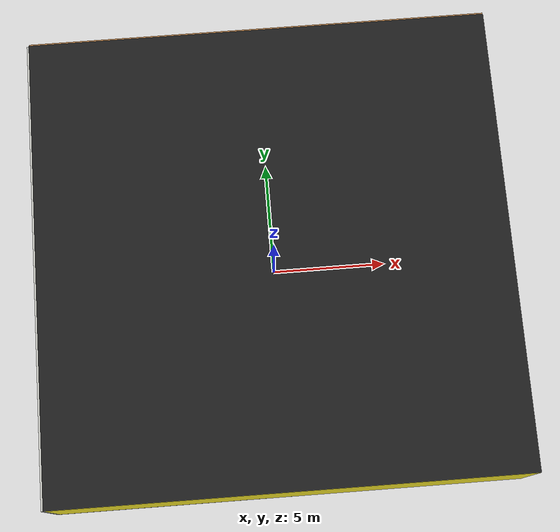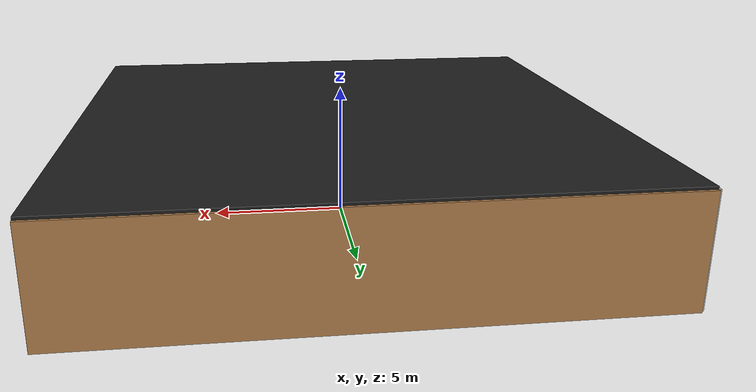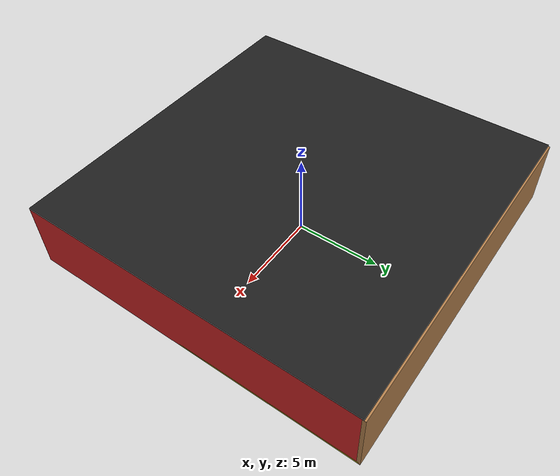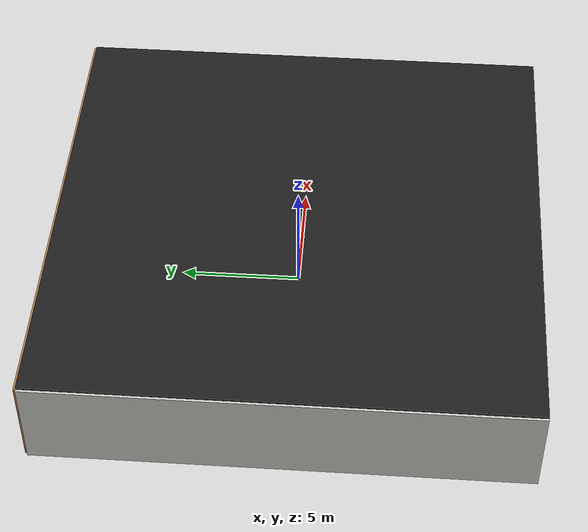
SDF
<sdf version="1.4">
 <world name="default">
  <physics type="ode">
   <max_step_size>0.001</max_step_size>
   <real_time_factor>1</real_time_factor>
   <real_time_update_rate>1000</real_time_update_rate>
   <gravity>0 0 -9.8</gravity>
  </physics>
  <scene><ambient>0.4 0.4 0.4 1</ambient><background>0.7 0.7 0.7 1</background><shadows>1</shadows></scene>
  <model name="Surrounding">
   <static>1</static>
   <link name="Ceiling">
    <collision name="Ceiling_Collision"><geometry><box><size>20 20 0.1</size></box></geometry></collision>
    <visual name="Ceiling_Visual">
     <geometry><box><size>20 20 0.1</size></box></geometry>
     <material>
      <script><uri>file://media/materials/scripts/gazebo.material</uri><name>Gazebo/FlatBlack</name></script>
     </material>
    </visual>
    <pose>0 0 4.05 0 0 0</pose>
   </link>
   <link name="Wall_South">
    <collision name="Wall_South_Collision">
     <geometry><box><size>20 0 4</size></box></geometry>
     <pose>0 0 2 0 -0 0</pose>
    </collision>
    <visual name="Wall_South_Visual">
     <pose>0 0 2 0 -0 0</pose>
     <geometry><box><size>20 0 4</size></box></geometry>
     <material>
      <script><uri>file://media/materials/scripts/gazebo.material</uri><name>Gazebo/YellowGlow</name></script>
     </material>
    </visual>
    <velocity_decay><linear>0</linear><angular>0</angular></velocity_decay>
    <pose>0 -10 0 0 -0 0</pose>
   </link>
   <link name="Wall_East">
    <collision name="Wall_21_Collision">
     <geometry><box><size>20 0 4</size></box></geometry>
     <pose>0 0 2 0 -0 0</pose>
    </collision>
    <visual name="Wall_21_Visual">
     <pose>0 0 2 0 -0 0</pose>
     <geometry><box><size>20 0 4</size></box></geometry>
     <material>
      <script><uri>file://media/materials/scripts/gazebo.material</uri><name>Gazebo/RedGlow</name></script>
     </material>
    </visual>
    <velocity_decay><linear>0</linear><angular>0</angular></velocity_decay>
    <pose>10 0 0 0 -0 1.5708</pose>
   </link>
   <link name="Wall_North">
    <collision name="Wall_22_Collision">
     <geometry><box><size>20 0.2 4</size></box></geometry>
     <pose>0 0 2 0 -0 0</pose>
    </collision>
    <visual name="Wall_22_Visual">
     <pose>0 0 2 0 -0 0</pose>
     <geometry><box><size>20 0.2 4</size></box></geometry>
     <material>
      <script><uri>file://media/materials/scripts/gazebo.material</uri><name>Gazebo/Wood</name></script>
     </material>
    </visual>
    <velocity_decay><linear>0</linear><angular>0</angular></velocity_decay>
    <pose>0 10 0 0 -0 0</pose>
   </link>
   <link name="Wall_West">
    <collision name="Wall_23_Collision">
     <geometry><box><size>20 0.2 4</size></box></geometry>
     <pose>0 0 2 0 -0 0</pose>
    </collision>
    <visual name="Wall_23_Visual">
     <pose>0 0 2 0 -0 0</pose>
     <geometry><box><size>20 0.2 4</size></box></geometry>
     <material>
      <script><uri>file://media/materials/scripts/gazebo.material</uri><name>Gazebo/CeilingTiled</name></script>
     </material>
    </visual>
    <velocity_decay><linear>0</linear><angular>0</angular></velocity_decay>
    <pose>-10 0 0 0 0 -1.5708</pose>
   </link>
   <link name="Ground_link">
    <collision name="collision">
     <pose>0 0 .05 0 -0 0</pose>
     <geometry><box><size>20 20 0.1</size></box></geometry>
    </collision>
    <visual name="visual">
     <pose>0 0 .05 0 -0 0</pose>
     <geometry><box><size>20 20 0.1</size></box></geometry>
     <material>
      <script><uri>file://media/materials/scripts/gazebo.material</uri><name>Gazebo/Yellow</name></script>
     </material>
    </visual>
   </link>
   <static>1</static>
  </model>
  <spherical_coordinates>
   <surface_model>EARTH_WGS84</surface_model>
   <latitude_deg>0</latitude_deg>
   <longitude_deg>0</longitude_deg>
   <elevation>0</elevation>
   <heading_deg>0</heading_deg>
  </spherical_coordinates>
  <light name="lightball_0" type="diffuse">
   <diffuse>0.8 0.8 0.8 1</diffuse>
   <specular>0.2 0.2 0.2 1</specular>
   <attenuation>
    <range>100</range>
    <constant>0.7</constant>
    <linear>0.01</linear>
    <quadratic>0.001</quadratic>
   </attenuation>
   <direction>-0.5 0.1 -0.9</direction>
   <pose>9.79805171139 1.19336873658 1.53606372777 0 0 0</pose>
  </light>
  <light name="lightball_1" type="diffuse">
   <diffuse>0.8 0.8 0.8 1</diffuse>
   <specular>0.2 0.2 0.2 1</specular>
   <attenuation>
    <range>100</range>
    <constant>0.7</constant>
    <linear>0.01</linear>
    <quadratic>0.001</quadratic>
   </attenuation>
   <direction>-0.5 0.1 -0.9</direction>
   <pose>6.9906907737 8.28463451133 2.64038604158 0 0 0</pose>
  </light>
  <light name="lightball_2" type="diffuse">
   <diffuse>0.8 0.8 0.8 1</diffuse>
   <specular>0.2 0.2 0.2 1</specular>
   <attenuation>
    <range>100</range>
    <constant>0.7</constant>
    <linear>0.01</linear>
    <quadratic>0.001</quadratic>
   </attenuation>
   <direction>-0.5 0.1 -0.9</direction>
   <pose>1.36857376962 0.340092543237 3.06527817623 0 0 0</pose>
  </light>
  <light name="lightball_3" type="diffuse">
   <diffuse>0.8 0.8 0.8 1</diffuse>
   <specular>0.2 0.2 0.2 1</specular>
   <attenuation>
    <range>100</range>
    <constant>0.7</constant>
    <linear>0.01</linear>
    <quadratic>0.001</quadratic>
   </attenuation>
   <direction>-0.5 0.1 -0.9</direction>
   <pose>-2.59412213324 -1.3387514272 1.86258417454 0 0 0</pose>
  </light>
  <light name="lightball_4" type="diffuse">
   <diffuse>0.8 0.8 0.8 1</diffuse>
   <specular>0.2 0.2 0.2 1</specular>
   <attenuation>
    <range>100</range>
    <constant>0.7</constant>
    <linear>0.01</linear>
    <quadratic>0.001</quadratic>
   </attenuation>
   <direction>-0.5 0.1 -0.9</direction>
   <pose>-9.84163159434 2.63220826551 3.40538882357 0 0 0</pose>
  </light>
  <light name="lightball_5" type="diffuse">
   <diffuse>0.8 0.8 0.8 1</diffuse>
   <specular>0.2 0.2 0.2 1</specular>
   <attenuation>
    <range>100</range>
    <constant>0.7</constant>
    <linear>0.01</linear>
    <quadratic>0.001</quadratic>
   </attenuation>
   <direction>-0.5 0.1 -0.9</direction>
   <pose>5.69724152469 -0.581491041942 1.71703802927 0 0 0</pose>
  </light>
  <light name="lightball_6" type="diffuse">
   <diffuse>0.8 0.8 0.8 1</diffuse>
   <specular>0.2 0.2 0.2 1</specular>
   <attenuation>
    <range>100</range>
    <constant>0.7</constant>
    <linear>0.01</linear>
    <quadratic>0.001</quadratic>
   </attenuation>
   <direction>-0.5 0.1 -0.9</direction>
   <pose>-7.34767767089 1.12435608214 0.910979148299 0 0 0</pose>
  </light>
  <light name="lightball_7" type="diffuse">
   <diffuse>0.8 0.8 0.8 1</diffuse>
   <specular>0.2 0.2 0.2 1</specular>
   <attenuation>
    <range>100</range>
    <constant>0.7</constant>
    <linear>0.01</linear>
    <quadratic>0.001</quadratic>
   </attenuation>
   <direction>-0.5 0.1 -0.9</direction>
   <pose>-5.526716294 -5.93635922858 1.80223847068 0 0 0</pose>
  </light>
  <include><uri>model://cabinet</uri><pose>-4.42369335651 -7.54577529274 0 0 0 1.07101092604</pose></include>
  <include>
   <uri>model://construction_cone</uri>
   <pose>-5.0031226976 8.0136086448 0 0 0 2.33960880807</pose>
  </include>
  <include><uri>model://cabinet</uri><pose>-1.7229375522 -6.96848643398 0 0 0 1.28004116804</pose></include>
  <include>
   <uri>model://construction_cone</uri>
   <pose>4.41539652945 -1.96800497897 0 0 0 2.59109649623</pose>
  </include>
  <include>
   <uri>model://textured_shapes</uri>
   <pose>3.70664219128 5.01491050209 0 0 0 0.591387995476</pose>
  </include>
  <include><uri>model://table</uri><pose>7.9918418987 -6.80202823664 0 0 0 0.163842561316</pose></include>
  <include><uri>model://cabinet</uri><pose>7.61683502672 8.14609191604 0 0 0 2.65764677687</pose></include>
 </world>
</sdf>

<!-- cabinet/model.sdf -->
<sdf version="1.5">
  <model name="cabinet">
    <static>true</static>
    <link name="cabinet_bottom_plate">
      <inertial>
        <pose>0 0 -1 0 0 0</pose>
        <inertia>
          <ixx>2.050000</ixx>
          <ixy>0</ixy>
          <ixz>0</ixz>
          <iyy>2.050000</iyy>
          <iyz>0</iyz>
          <izz>2.050000</izz>
        </inertia>
        <mass>25.000000</mass>
      </inertial>
      <collision name="cabinet_bottom_plate_geom">
        <pose>0 0 0.010000 0 0 0</pose>
        <geometry>
          <box>
            <size>0.450000 0.450000 0.020000</size>
          </box>
        </geometry>
      </collision>
      <visual name="cabinet_bottom_plate_geom_visual">
        <pose>0 0 0.010000 0 0 0</pose>
        <geometry>
          <box>
            <size>0.450000 0.450000 0.020000</size>
          </box>
        </geometry>
        <material>
          <script>
            <uri>model://media/materials/scripts/gazebo.material</uri>
            <name>Gazebo/Wood</name>
          </script>
        </material>
      </visual>
      <collision name="cabinet_bottom_plate_geom_cabinet_back_plate">
        <pose>0.235000 0 0.510000 0 0 0</pose>
        <geometry>
          <box>
            <size>0.020000 0.450000 1.020000</size>
          </box>
        </geometry>
      </collision>
      <visual name="cabinet_bottom_plate_geom_cabinet_back_plate_visual">
        <pose>0.235000 0 0.510000 0 0 0</pose>
        <geometry>
          <box>
            <size>0.020000 0.450000 1.020000</size>
          </box>
        </geometry>
        <material>
          <script>
            <uri>model://media/materials/scripts/gazebo.material</uri>
            <name>Gazebo/Wood</name>
          </script>
        </material>
      </visual>
      <collision name="cabinet_bottom_plate_geom_cabinet_left_plate">
        <pose>0 0.235000 0.510000 0 0 0</pose>
        <geometry>
          <box>
            <size>0.450000 0.020000 1.020000</size>
          </box>
        </geometry>
      </collision>
      <visual name="cabinet_bottom_plate_geom_cabinet_left_plate_visual">
        <pose>0 0.235000 0.510000 0 0 0</pose>
        <geometry>
          <box>
            <size>0.450000 0.020000 1.020000</size>
          </box>
        </geometry>
        <material>
          <script>
            <uri>model://media/materials/scripts/gazebo.material</uri>
            <name>Gazebo/Wood</name>
          </script>
        </material>
      </visual>
      <collision name="cabinet_bottom_plate_geom_cabinet_middle_plate">
        <pose>0 0 0.510000 0 0 0</pose>
        <geometry>
          <box>
            <size>0.450000 0.450000 0.020000</size>
          </box>
        </geometry>
      </collision>
      <visual name="cabinet_bottom_plate_geom_cabinet_middle_plate_visual">
        <pose>0 0 0.510000 0 0 0</pose>
        <geometry>
          <box>
            <size>0.450000 0.450000 0.020000</size>
          </box>
        </geometry>
        <material>
          <script>
            <uri>model://media/materials/scripts/gazebo.material</uri>
            <name>Gazebo/Wood</name>
          </script>
        </material>
      </visual>
      <collision name="cabinet_bottom_plate_geom_cabinet_right_plate">
        <pose>0 -0.235000 0.510000 0 0 0</pose>
        <geometry>
          <box>
            <size>0.450000 0.020000 1.020000</size>
          </box>
        </geometry>
      </collision>
      <visual name="cabinet_bottom_plate_geom_cabinet_right_plate_visual">
        <pose>0 -0.235000 0.510000 0 0 0</pose>
        <geometry>
          <box>
            <size>0.450000 0.020000 1.020000</size>
          </box>
        </geometry>
        <material>
          <script>
            <uri>model://media/materials/scripts/gazebo.material</uri>
            <name>Gazebo/Wood</name>
          </script>
        </material>
      </visual>
      <collision name="cabinet_bottom_plate_geom_cabinet_top_plate">
        <pose>0 0 1.010000 0 0 0</pose>
        <geometry>
          <box>
            <size>0.450000 0.450000 0.020000</size>
          </box>
        </geometry>
      </collision>
      <visual name="cabinet_bottom_plate_geom_cabinet_top_plate_visual">
        <pose>0 0 1.010000 0 0 0</pose>
        <geometry>
          <box>
            <size>0.450000 0.450000 0.020000</size>
          </box>
        </geometry>
        <material>
          <script>
            <uri>model://media/materials/scripts/gazebo.material</uri>
            <name>Gazebo/Wood</name>
          </script>
        </material>
      </visual>
    </link>
  </model>
</sdf>

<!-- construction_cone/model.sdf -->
<sdf version="1.5">
  <model name="Construction Cone">
    <link name="link">
      <collision name="collision">
        <geometry>
          <mesh>
            <scale>10 10 10</scale>
            <uri>file://isr-testbed/construction_cone/meshes/construction_cone.dae</uri>
          </mesh>
        </geometry>
      </collision>
      <visual name="visual">
        <geometry>
          <mesh>
            <scale>10 10 10</scale>
            <uri>file://isr-testbed/construction_cone/meshes/construction_cone.dae</uri>
          </mesh>
        </geometry>
      </visual>
    </link>
  </model>
</sdf>

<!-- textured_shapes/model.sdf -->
<sdf version="1.6">
  <model name="textured_shapes">
    <pose>0 0 0.5 0 0 0</pose>
    <link name="box">
      <pose>0 -1.5 0 0 0 0</pose>
      <collision name="collision">
        <geometry>
          <box>
            <size>1 1 1</size>
          </box>
        </geometry>
      </collision>
      <visual name="visual">
        <geometry>
          <box>
            <size>1 1 1</size>
          </box>
        </geometry>
        <material>
          <script>
            <uri>model://../model_source/models/textured_shapes/materials/scripts</uri>
            <uri>model://../model_source/models/textured_shapes/materials/textures</uri>
            <name>TexturedShape/Squares</name>
          </script>
        </material>
      </visual>
    </link>
    <link name="sphere">
      <collision name="collision">
        <geometry>
          <sphere>
            <radius>0.5</radius>
          </sphere>
        </geometry>
      </collision>
      <visual name="visual">
        <geometry>
          <sphere>
            <radius>0.5</radius>
          </sphere>
        </geometry>
        <material>
          <script>
            <uri>model://../model_source/models/textured_shapes/materials/scripts</uri>
            <uri>model://../model_source/models/textured_shapes/materials/textures</uri>
            <name>TexturedShape/Squares</name>
          </script>
        </material>
      </visual>
    </link>
    <link name="cylinder">
      <pose>0 1.5 0 0 0 0</pose>
      <collision name="collision">
        <geometry>
          <cylinder>
            <radius>0.5</radius>
            <length>1</length>
          </cylinder>
        </geometry>
      </collision>
      <visual name="visual">
        <geometry>
          <cylinder>
            <radius>0.5</radius>
            <length>1</length>
          </cylinder>
        </geometry>
        <material>
          <script>
            <uri>model://../model_source/models/textured_shapes/materials/scripts</uri>
            <uri>model://../model_source/models/textured_shapes/materials/textures</uri>
            <name>TexturedShape/Squares</name>
          </script>
        </material>
      </visual>
    </link>
  </model>
</sdf>

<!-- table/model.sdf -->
<sdf version="1.5">
  <model name="table">
    <static>true</static>
    <link name="link">
      <collision name="surface">
        <pose>0 0 1.0 0 0 0</pose>
        <geometry>
          <box>
            <size>1.5 0.8 0.03</size>
          </box>
        </geometry>
        <surface>
          <friction>
            <ode>
              <mu>0.6</mu>
              <mu2>0.6</mu2>
            </ode>
          </friction>
        </surface>
      </collision>
      <visual name="visual1">
        <pose>0 0 1.0 0 0 0</pose>
        <geometry>
          <box>
            <size>1.5 0.8 0.03</size>
          </box>
        </geometry>
        <material>
          <script>
            <uri>model://media/materials/scripts/gazebo.material</uri>
            <name>Gazebo/Wood</name>
          </script>
        </material>
      </visual>
      <collision name="front_left_leg">
        <pose>0.68 0.38 0.5 0 0 0</pose>
        <geometry>
          <cylinder>
            <radius>0.02</radius>
            <length>1.0</length>
          </cylinder>
        </geometry>
      </collision>
      <visual name="front_left_leg">
        <pose>0.68 0.38 0.5 0 0 0</pose>
        <geometry>
          <cylinder>
            <radius>0.02</radius>
            <length>1.0</length>
          </cylinder>
        </geometry>
        <material>
          <script>
            <uri>model://media/materials/scripts/gazebo.material</uri>
            <name>Gazebo/Grey</name>
          </script>
        </material>
      </visual>
      <collision name="front_right_leg">
        <pose>0.68 -0.38 0.5 0 0 0</pose>
        <geometry>
          <cylinder>
            <radius>0.02</radius>
            <length>1.0</length>
          </cylinder>
        </geometry>
      </collision>
      <visual name="front_right_leg">
        <pose>0.68 -0.38 0.5 0 0 0</pose>
        <geometry>
          <cylinder>
            <radius>0.02</radius>
            <length>1.0</length>
          </cylinder>
        </geometry>
        <material>
          <script>
            <uri>model://media/materials/scripts/gazebo.material</uri>
            <name>Gazebo/Grey</name>
          </script>
        </material>
      </visual>
      <collision name="back_right_leg">
        <pose>-0.68 -0.38 0.5 0 0 0</pose>
        <geometry>
          <cylinder>
            <radius>0.02</radius>
            <length>1.0</length>
          </cylinder>
        </geometry>
      </collision>
      <visual name="back_right_leg">
        <pose>-0.68 -0.38 0.5 0 0 0</pose>
        <geometry>
          <cylinder>
            <radius>0.02</radius>
            <length>1.0</length>
          </cylinder>
        </geometry>
        <material>
          <script>
            <uri>model://media/materials/scripts/gazebo.material</uri>
            <name>Gazebo/Grey</name>
          </script>
        </material>
      </visual>
      <collision name="back_left_leg">
        <pose>-0.68 0.38 0.5 0 0 0</pose>
        <geometry>
          <cylinder>
            <radius>0.02</radius>
            <length>1.0</length>
          </cylinder>
        </geometry>
      </collision>
      <visual name="back_left_leg">
        <pose>-0.68 0.38 0.5 0 0 0</pose>
        <geometry>
          <cylinder>
            <radius>0.02</radius>
            <length>1.0</length>
          </cylinder>
        </geometry>
        <material>
          <script>
            <uri>model://media/materials/scripts/gazebo.material</uri>
            <name>Gazebo/Grey</name>
          </script>
        </material>
      </visual>
    </link>
  </model>
</sdf>
